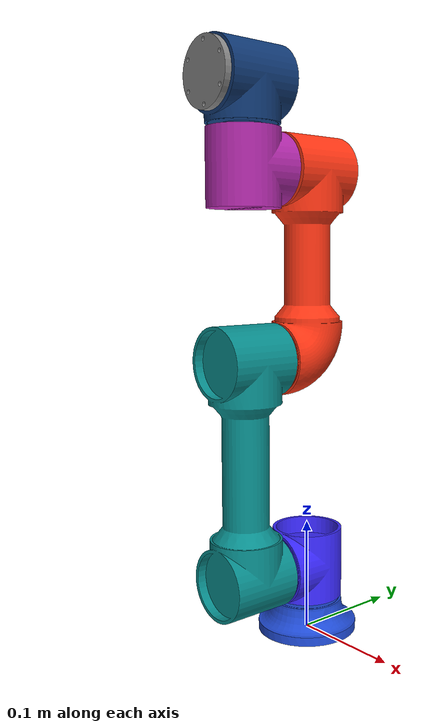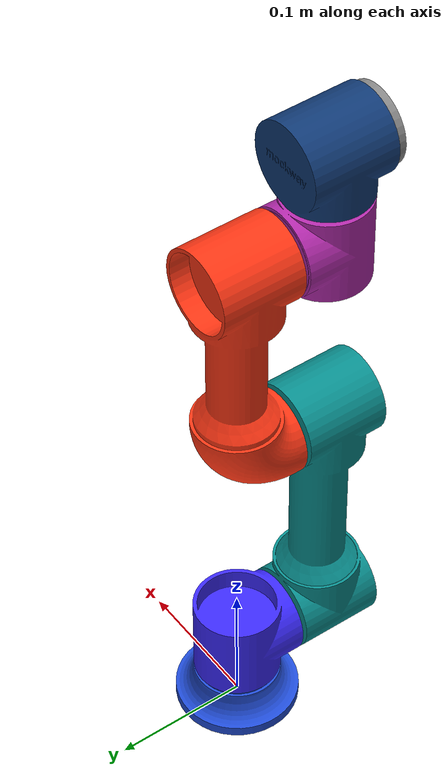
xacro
<?xml version="1.0"?>
<robot xmlns:xacro="http://www.ros.org/wiki/xacro" name="mockway_description">
    <xacro:arg name="initial_positions_file" default="initial_positions.yaml" />

    <!-- If gazebo -->
    <xacro:arg name="use_gazebo" default="false" />

    <!-- Import mockway_description urdf file -->
    <xacro:include filename="$(find mockway_description)/urdf/mockway_description.urdf" />

    <!-- Import control_xacro -->
    <xacro:include filename="mockway_description.ros2_control.xacro" />

    <xacro:mockway_description_ros2_control name="FakeSystem" initial_positions_file="$(arg initial_positions_file)" use_gazebo="$(arg use_gazebo)"/>

    <xacro:if value="$(arg use_gazebo)">
        <!-- Gazebo 中固定底座，防止 base_link 作为自由刚体受重力掉落或倾倒。 -->
        <link name="world"/>
        <joint name="world_fixed" type="fixed">
            <parent link="world"/>
            <child link="base_link"/>
            <origin xyz="0 0 0.02" rpy="0 0 0"/>
        </joint>

        <gazebo>
            <plugin filename="gz_ros2_control-system" name="gz_ros2_control::GazeboSimROS2ControlPlugin">
                <parameters>
                    $(find moveit_mockway_config)/config/ros2_controllers.yaml
                </parameters>
            </plugin>
        </gazebo>
    </xacro:if>

</robot>

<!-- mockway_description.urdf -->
<robot name="mockway_description">

  <link name="base_link">
    <inertial>
      <mass value="0.097"/>
      <origin xyz="-0.000 -0.000 0.014" rpy="0 0 0"/>
      <inertia ixx="0.000049" iyy="0.000049" izz="0.000080" ixy="-0.000000" ixz="0.000000" iyz="0.000000"/>
    </inertial>
    <visual>
      <origin xyz="0 0 0" rpy="0 0 0"/>
      <geometry>
        <mesh filename="package://mockway_description/meshes/base_link.stl"/>
      </geometry>
      <material name="">
        <color rgba="0.127 0.301 0.847 1.000"/>
      </material>
    </visual>
    <collision>
      <origin xyz="0 0 0" rpy="0 0 0"/>
      <geometry>
        <mesh filename="package://mockway_description/meshes/base_link.stl"/>
      </geometry>
    </collision>
  </link>

  <joint name="joint1" type="revolute">
    <parent link="base_link"/>
    <child link="link1"/>
    <origin xyz="0.000 0.000 0.064" rpy="0.000 -0.000 0.000"/>
    <axis xyz="0 0 1"/>
    <limit lower="-6.280" upper="6.280" effort="9.000" velocity="3.140"/>
  </joint>

  <link name="link1">
    <inertial>
      <mass value="0.378"/>
      <origin xyz="0.000 -0.003 -0.005" rpy="0 0 0"/>
      <inertia ixx="0.000195" iyy="0.000176" izz="0.000204" ixy="-0.000000" ixz="-0.000000" iyz="0.000005"/>
    </inertial>
    <visual>
      <origin xyz="0 0 0" rpy="0 0 0"/>
      <geometry>
        <mesh filename="package://mockway_description/meshes/link1.stl"/>
      </geometry>
      <material name="">
        <color rgba="0.231 0.162 1.000 1.000"/>
      </material>
    </visual>
    <collision>
      <origin xyz="0 0 0" rpy="0 0 0"/>
      <geometry>
        <mesh filename="package://mockway_description/meshes/link1.stl"/>
      </geometry>
    </collision>
  </link>

  <joint name="joint2" type="revolute">
    <parent link="link1"/>
    <child link="link2"/>
    <origin xyz="0.000 0.000 0.000" rpy="1.571 -0.000 0.000"/>
    <axis xyz="0 0 1"/>
    <limit lower="-6.280" upper="6.280" effort="9.000" velocity="3.140"/>
  </joint>

  <link name="link2">
    <inertial>
      <mass value="0.568"/>
      <origin xyz="0.000 0.035 0.069" rpy="0 0 0"/>
      <inertia ixx="0.002661" iyy="0.000305" izz="0.002654" ixy="-0.000000" ixz="-0.000000" iyz="-0.000043"/>
    </inertial>
    <visual>
      <origin xyz="0 0 0" rpy="0 0 0"/>
      <geometry>
        <mesh filename="package://mockway_description/meshes/link2.stl"/>
      </geometry>
      <material name="">
        <color rgba="0.031 0.558 0.558 1.000"/>
      </material>
    </visual>
    <collision>
      <origin xyz="0 0 0" rpy="0 0 0"/>
      <geometry>
        <mesh filename="package://mockway_description/meshes/link2.stl"/>
      </geometry>
    </collision>
  </link>

  <joint name="joint3" type="revolute">
    <parent link="link2"/>
    <child link="link3"/>
    <origin xyz="0.000 0.190 0.000" rpy="0.000 -0.000 0.000"/>
    <axis xyz="0 0 1"/>
    <limit lower="-3.140" upper="3.140" effort="9.000" velocity="3.140"/>
  </joint>

  <link name="link3">
    <inertial>
      <mass value="0.488"/>
      <origin xyz="-0.000 0.131 0.006" rpy="0 0 0"/>
      <inertia ixx="0.001818" iyy="0.000257" izz="0.001814" ixy="0.000000" ixz="-0.000000" iyz="0.000079"/>
    </inertial>
    <visual>
      <origin xyz="0 0 0" rpy="0 0 0"/>
      <geometry>
        <mesh filename="package://mockway_description/meshes/link3.stl"/>
      </geometry>
      <material name="">
        <color rgba="1.000 0.212 0.080 1.000"/>
      </material>
    </visual>
    <collision>
      <origin xyz="0 0 0" rpy="0 0 0"/>
      <geometry>
        <mesh filename="package://mockway_description/meshes/link3.stl"/>
      </geometry>
    </collision>
  </link>

  <joint name="joint4" type="revolute">
    <parent link="link3"/>
    <child link="link4"/>
    <origin xyz="0.000 0.163 0.000" rpy="0.000 -0.000 0.000"/>
    <axis xyz="0 0 1"/>
    <limit lower="-6.280" upper="6.280" effort="3.000" velocity="3.140"/>
  </joint>

  <link name="link4">
    <inertial>
      <mass value="0.378"/>
      <origin xyz="0.000 0.005 0.068" rpy="0 0 0"/>
      <inertia ixx="0.000195" iyy="0.000204" izz="0.000176" ixy="0.000000" ixz="-0.000000" iyz="-0.000005"/>
    </inertial>
    <visual>
      <origin xyz="0 0 0" rpy="0 0 0"/>
      <geometry>
        <mesh filename="package://mockway_description/meshes/link4.stl"/>
      </geometry>
      <material name="">
        <color rgba="0.701 0.162 0.672 1.000"/>
      </material>
    </visual>
    <collision>
      <origin xyz="0 0 0" rpy="0 0 0"/>
      <geometry>
        <mesh filename="package://mockway_description/meshes/link4.stl"/>
      </geometry>
    </collision>
  </link>

  <joint name="joint5" type="revolute">
    <parent link="link4"/>
    <child link="link5"/>
    <origin xyz="0.000 0.000 0.071" rpy="-1.571 0.000 0.000"/>
    <axis xyz="0 0 1"/>
    <limit lower="-6.280" upper="6.280" effort="3.000" velocity="3.140"/>
  </joint>

  <link name="link5">
    <inertial>
      <mass value="0.378"/>
      <origin xyz="-0.000 -0.005 0.068" rpy="0 0 0"/>
      <inertia ixx="0.000195" iyy="0.000204" izz="0.000176" ixy="0.000000" ixz="0.000000" iyz="0.000005"/>
    </inertial>
    <visual>
      <origin xyz="0 0 0" rpy="0 0 0"/>
      <geometry>
        <mesh filename="package://mockway_description/meshes/link5.stl"/>
      </geometry>
      <material name="">
        <color rgba="0.061 0.223 0.456 1.000"/>
      </material>
    </visual>
    <collision>
      <origin xyz="0 0 0" rpy="0 0 0"/>
      <geometry>
        <mesh filename="package://mockway_description/meshes/link5.stl"/>
      </geometry>
    </collision>
  </link>

  <joint name="joint6" type="revolute">
    <parent link="link5"/>
    <child link="link6"/>
    <origin xyz="0.000 -0.039 0.071" rpy="1.571 -0.000 0.000"/>
    <axis xyz="0 0 1"/>
    <limit lower="-6.280" upper="6.280" effort="3.000" velocity="3.140"/>
  </joint>

  <link name="link6">
    <inertial>
      <mass value="0.016"/>
      <origin xyz="0.000 -0.000 -0.004" rpy="0 0 0"/>
      <inertia ixx="0.000003" iyy="0.000003" izz="0.000006" ixy="0.000000" ixz="0.000000" iyz="0.000000"/>
    </inertial>
    <visual>
      <origin xyz="0 0 0" rpy="0 0 0"/>
      <geometry>
        <mesh filename="package://mockway_description/meshes/link6.stl"/>
      </geometry>
      <material name="">
        <color rgba="0.527 0.527 0.527 1.000"/>
      </material>
    </visual>
    <collision>
      <origin xyz="0 0 0" rpy="0 0 0"/>
      <geometry>
        <mesh filename="package://mockway_description/meshes/link6.stl"/>
      </geometry>
    </collision>
  </link>

</robot>
